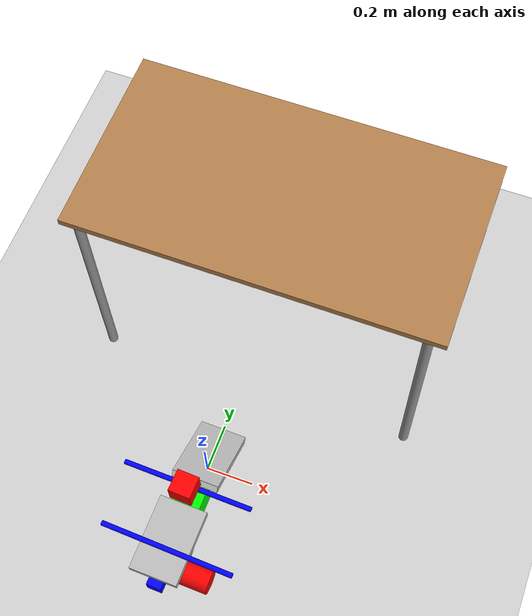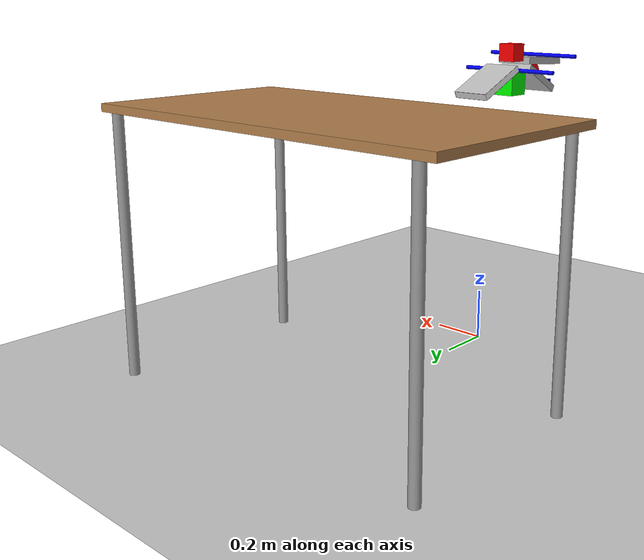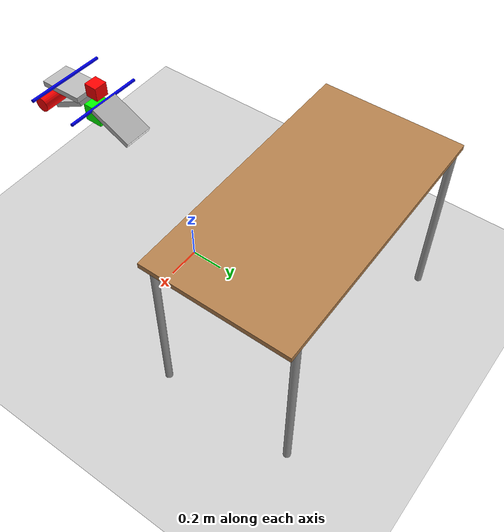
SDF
<sdf version="1.7">
 <world name="default">
  <light name="sun" type="directional">
   <pose>0 0 10 0 -0 0</pose>
   <diffuse>0.8 0.8 0.8 1</diffuse>
   <specular>0.2 0.2 0.2 1</specular>
   <attenuation>
    <range>1000</range>
    <constant>0.9</constant>
    <linear>0.01</linear>
    <quadratic>0.001</quadratic>
   </attenuation>
   <direction>-0.5 0.1 -0.9</direction>
   <spot><inner_angle>0</inner_angle><outer_angle>0</outer_angle><falloff>0</falloff></spot>
  </light>
  <model name="ground_plane">
   <static>1</static>
   <link name="link">
    <collision name="collision">
     <geometry><plane><normal>0 0 1</normal><size>100 100</size></plane></geometry>
     <surface><friction><ode><mu>100</mu><mu2>50</mu2></ode></friction></surface>
    </collision>
    <visual name="visual">
     <cast_shadows>0</cast_shadows>
     <geometry><plane><normal>0 0 1</normal><size>100 100</size></plane></geometry>
     <material>
      <script><uri>file://media/materials/scripts/gazebo.material</uri><name>Gazebo/Grey</name></script>
     </material>
    </visual>
   </link>
  </model>
  <gravity>0 0 -9.8</gravity>
  <magnetic_field>6e-06 2.3e-05 -4.2e-05</magnetic_field>
  <atmosphere type="adiabatic"/>
  <physics type="ode">
   <max_step_size>0.001</max_step_size>
   <real_time_factor>1</real_time_factor>
   <real_time_update_rate>1000</real_time_update_rate>
  </physics>
  <scene><ambient>0.4 0.4 0.4 1</ambient><background>0.7 0.7 0.7 1</background><shadows>1</shadows></scene>
  <audio><device>default</device></audio>
  <spherical_coordinates>
   <surface_model>EARTH_WGS84</surface_model>
   <latitude_deg>0</latitude_deg>
   <longitude_deg>0</longitude_deg>
   <elevation>0</elevation>
   <heading_deg>0</heading_deg>
  </spherical_coordinates>
  <model name="table">
   <static>1</static>
   <link name="link">
    <collision name="surface">
     <pose>0 0 1 0 -0 0</pose>
     <geometry><box><size>1.5 0.8 0.03</size></box></geometry>
     <surface>
      <friction><ode><mu>1.5</mu><mu2>1.5</mu2></ode></friction>
      <contact><ode><soft_cfm>0.0001</soft_cfm><soft_erp>0.4</soft_erp><kp>1e+06</kp><kd>10</kd></ode></contact>
     </surface>
    </collision>
    <visual name="visual1">
     <pose>0 0 1 0 -0 0</pose>
     <geometry><box><size>1.5 0.8 0.03</size></box></geometry>
     <material>
      <script><uri>file://media/materials/scripts/gazebo.material</uri><name>Gazebo/Wood</name></script>
     </material>
    </visual>
    <collision name="front_left_leg">
     <pose>0.68 0.38 0.5 0 -0 0</pose>
     <geometry><cylinder><radius>0.02</radius><length>1</length></cylinder></geometry>
    </collision>
    <visual name="front_left_leg">
     <pose>0.68 0.38 0.5 0 -0 0</pose>
     <geometry><cylinder><radius>0.02</radius><length>1</length></cylinder></geometry>
     <material>
      <script><uri>file://media/materials/scripts/gazebo.material</uri><name>Gazebo/Grey</name></script>
     </material>
    </visual>
    <collision name="front_right_leg">
     <pose>0.68 -0.38 0.5 0 -0 0</pose>
     <geometry><cylinder><radius>0.02</radius><length>1</length></cylinder></geometry>
    </collision>
    <visual name="front_right_leg">
     <pose>0.68 -0.38 0.5 0 -0 0</pose>
     <geometry><cylinder><radius>0.02</radius><length>1</length></cylinder></geometry>
     <material>
      <script><uri>file://media/materials/scripts/gazebo.material</uri><name>Gazebo/Grey</name></script>
     </material>
    </visual>
    <collision name="back_right_leg">
     <pose>-0.68 -0.38 0.5 0 -0 0</pose>
     <geometry><cylinder><radius>0.02</radius><length>1</length></cylinder></geometry>
    </collision>
    <visual name="back_right_leg">
     <pose>-0.68 -0.38 0.5 0 -0 0</pose>
     <geometry><cylinder><radius>0.02</radius><length>1</length></cylinder></geometry>
     <material>
      <script><uri>file://media/materials/scripts/gazebo.material</uri><name>Gazebo/Grey</name></script>
     </material>
    </visual>
    <collision name="back_left_leg">
     <pose>-0.68 0.38 0.5 0 -0 0</pose>
     <geometry><cylinder><radius>0.02</radius><length>1</length></cylinder></geometry>
    </collision>
    <visual name="back_left_leg">
     <pose>-0.68 0.38 0.5 0 -0 0</pose>
     <geometry><cylinder><radius>0.02</radius><length>1</length></cylinder></geometry>
     <material>
      <script><uri>file://media/materials/scripts/gazebo.material</uri><name>Gazebo/Grey</name></script>
     </material>
    </visual>
    <inertial>
     <inertia><ixx>1</ixx><ixy>0</ixy><ixz>0</ixz><iyy>1</iyy><iyz>0</iyz><izz>1</izz></inertia>
     <mass>50</mass>
    </inertial>
   </link>
   <pose>0.056083 0.801191 -1.2e-05 0 -0 2.5e-05</pose>
  </model>
  <plugin name="gazebo_link_attacher" filename="libgazebo_link_attacher.so"/>
  <model name="cube_b_small_0">
   <link name="link_2">
    <inertial>
     <mass>1</mass>
     <inertia>
      <ixx>7.84311e-06</ixx>
      <ixy>0</ixy>
      <ixz>0</ixz>
      <iyy>7.90554e-06</iyy>
      <iyz>0</iyz>
      <izz>1.02399e-05</izz>
     </inertia>
    </inertial>
    <visual name="visual">
     <geometry><box><size>0.05 0.05 0.05</size></box></geometry>
     <material>
      <lighting>1</lighting>
      <script><uri>file://media/materials/scripts/gazebo.material</uri><name>Gazebo/Grey</name></script>
      <ambient>0 0 1 1</ambient>
      <diffuse>0 0 1 1</diffuse>
      <specular>0 0 0 1</specular>
      <emissive>0 0 0 1</emissive>
      <shader type="vertex"><normal_map>__default__</normal_map></shader>
     </material>
    </visual>
    <collision name="collision">
     <geometry><box><size>0.05 0.05 0.05</size></box></geometry>
     <surface>
      <friction>
       <ode><mu>1</mu><mu2>1</mu2><fdir1>0 0 0</fdir1><slip1>0</slip1><slip2>0</slip2></ode>
       <torsional>
        <coefficient>1</coefficient>
        <patch_radius>0</patch_radius>
        <surface_radius>0</surface_radius>
        <use_patch_radius>1</use_patch_radius>
        <ode><slip>0</slip></ode>
       </torsional>
      </friction>
      <bounce><restitution_coefficient>0</restitution_coefficient><threshold>1e+06</threshold></bounce>
      <contact>
       <collide_without_contact>0</collide_without_contact>
       <collide_without_contact_bitmask>1</collide_without_contact_bitmask>
       <collide_bitmask>1</collide_bitmask>
       <ode>
        <soft_cfm>0</soft_cfm>
        <soft_erp>0.2</soft_erp>
        <kp>1e+13</kp>
        <kd>1</kd>
        <max_vel>0.01</max_vel>
        <min_depth>0</min_depth>
       </ode>
       <bullet>
        <split_impulse>1</split_impulse>
        <split_impulse_penetration_threshold>-0.01</split_impulse_penetration_threshold>
        <soft_cfm>0</soft_cfm>
        <soft_erp>0.2</soft_erp>
        <kp>1e+13</kp>
        <kd>1</kd>
       </bullet>
      </contact>
     </surface>
    </collision>
   </link>
   <static>0</static>
   <allow_auto_disable>0</allow_auto_disable>
   <pose>0.169284 -0.690401 0.987528 0.001246 -0.004258 -0.024413</pose>
  </model>
  <model name="cube_g">
   <link name="link_2">
    <inertial>
     <mass>1</mass>
     <inertia>
      <ixx>0.00166667</ixx>
      <iyy>0.00166667</iyy>
      <izz>0.00166667</izz>
      <ixy>0</ixy>
      <ixz>0</ixz>
      <iyz>0</iyz>
     </inertia>
    </inertial>
    <visual name="visual">
     <geometry><box><size>0.1 0.1 0.1</size></box></geometry>
     <material>
      <lighting>1</lighting>
      <script><uri>file://media/materials/scripts/gazebo.material</uri><name>Gazebo/Grey</name></script>
      <ambient>0 1 0 1</ambient>
      <diffuse>0 1 0 1</diffuse>
      <specular>0 0 0 1</specular>
      <emissive>0 0 0 1</emissive>
      <shader type="vertex"><normal_map>__default__</normal_map></shader>
     </material>
    </visual>
    <collision name="collision">
     <geometry><box><size>0.1 0.1 0.1</size></box></geometry>
     <surface>
      <friction>
       <ode><mu>1</mu><mu2>1</mu2><fdir1>0 0 0</fdir1><slip1>0</slip1><slip2>0</slip2></ode>
       <torsional>
        <coefficient>1</coefficient>
        <patch_radius>0</patch_radius>
        <surface_radius>0</surface_radius>
        <use_patch_radius>1</use_patch_radius>
        <ode><slip>0</slip></ode>
       </torsional>
      </friction>
      <bounce><restitution_coefficient>0</restitution_coefficient><threshold>1e+06</threshold></bounce>
      <contact>
       <collide_without_contact>0</collide_without_contact>
       <collide_without_contact_bitmask>1</collide_without_contact_bitmask>
       <collide_bitmask>1</collide_bitmask>
       <ode>
        <soft_cfm>0.0001</soft_cfm>
        <soft_erp>0.4</soft_erp>
        <kp>1e+06</kp>
        <kd>10</kd>
        <max_vel>0.01</max_vel>
        <min_depth>0</min_depth>
       </ode>
       <bullet>
        <split_impulse>1</split_impulse>
        <split_impulse_penetration_threshold>-0.01</split_impulse_penetration_threshold>
        <soft_cfm>0</soft_cfm>
        <soft_erp>0.2</soft_erp>
        <kp>1e+13</kp>
        <kd>1</kd>
       </bullet>
      </contact>
     </surface>
    </collision>
   </link>
   <static>0</static>
   <allow_auto_disable>0</allow_auto_disable>
   <pose>0.17007 -0.415898 1.01283 0.001112 -0.004103 -0.017184</pose>
  </model>
  <model name="cube_r_small">
   <link name="link_2">
    <inertial>
     <mass>0.250457</mass>
     <inertia>
      <ixx>0.000645016</ixx>
      <ixy>0</ixy>
      <ixz>0</ixz>
      <iyy>0.000658595</iyy>
      <iyz>0</iyz>
      <izz>0.000689071</izz>
     </inertia>
    </inertial>
    <visual name="visual">
     <geometry><box><size>0.075 0.075 0.075</size></box></geometry>
     <material>
      <lighting>1</lighting>
      <script><uri>file://media/materials/scripts/gazebo.material</uri><name>Gazebo/Grey</name></script>
      <ambient>1 0 0 1</ambient>
      <diffuse>1 0 0 1</diffuse>
      <specular>0 0 0 1</specular>
      <emissive>0 0 0 1</emissive>
      <shader type="vertex"><normal_map>__default__</normal_map></shader>
     </material>
    </visual>
    <collision name="collision">
     <geometry><box><size>0.075 0.075 0.075</size></box></geometry>
     <surface>
      <friction>
       <ode><mu>1</mu><mu2>1</mu2><fdir1>0 0 0</fdir1><slip1>0</slip1><slip2>0</slip2></ode>
       <torsional>
        <coefficient>1</coefficient>
        <patch_radius>0</patch_radius>
        <surface_radius>0</surface_radius>
        <use_patch_radius>1</use_patch_radius>
        <ode><slip>0</slip></ode>
       </torsional>
      </friction>
      <bounce><restitution_coefficient>0</restitution_coefficient><threshold>1e+06</threshold></bounce>
      <contact>
       <collide_without_contact>0</collide_without_contact>
       <collide_without_contact_bitmask>1</collide_without_contact_bitmask>
       <collide_bitmask>1</collide_bitmask>
       <ode>
        <soft_cfm>0.0001</soft_cfm>
        <soft_erp>0.4</soft_erp>
        <kp>1e+06</kp>
        <kd>10</kd>
        <max_vel>0.01</max_vel>
        <min_depth>0</min_depth>
       </ode>
       <bullet>
        <split_impulse>1</split_impulse>
        <split_impulse_penetration_threshold>-0.01</split_impulse_penetration_threshold>
        <soft_cfm>0</soft_cfm>
        <soft_erp>0.2</soft_erp>
        <kp>1e+13</kp>
        <kd>1</kd>
       </bullet>
      </contact>
     </surface>
    </collision>
   </link>
   <static>0</static>
   <allow_auto_disable>0</allow_auto_disable>
   <pose>0.163211 -0.416732 1.14449 0.00103 -0.003905 -0.040867</pose>
  </model>
  <model name="book_17_dynamic">
   <link name="cover">
    <pose>0 -0.000108 0.015405 0 -0 0</pose>
    <visual name="visual">
     <geometry><box><size>0.245 0.16 0.03</size></box></geometry>
     <material>
      <script>
       <uri>model://book_17/materials/scripts</uri>
       <uri>model://book_17/materials/textures</uri>
       <name>book_17</name>
      </script>
      <shader type="pixel"/>
     </material>
    </visual>
    <collision name="collision">
     <geometry><box><size>0.245 0.16 0.03</size></box></geometry>
     <surface>
      <friction>
       <ode><mu>1</mu><mu2>1</mu2><fdir1>0 0 0</fdir1><slip1>0</slip1><slip2>0</slip2></ode>
       <torsional>
        <coefficient>1</coefficient>
        <patch_radius>0</patch_radius>
        <surface_radius>0</surface_radius>
        <use_patch_radius>1</use_patch_radius>
        <ode><slip>0</slip></ode>
       </torsional>
      </friction>
      <bounce><restitution_coefficient>0</restitution_coefficient><threshold>1e+06</threshold></bounce>
      <contact>
       <collide_without_contact>0</collide_without_contact>
       <collide_without_contact_bitmask>1</collide_without_contact_bitmask>
       <collide_bitmask>1</collide_bitmask>
       <ode>
        <soft_cfm>0</soft_cfm>
        <soft_erp>0.2</soft_erp>
        <kp>1e+13</kp>
        <kd>1</kd>
        <max_vel>0.01</max_vel>
        <min_depth>0</min_depth>
       </ode>
       <bullet>
        <split_impulse>1</split_impulse>
        <split_impulse_penetration_threshold>-0.01</split_impulse_penetration_threshold>
        <soft_cfm>0</soft_cfm>
        <soft_erp>0.2</soft_erp>
        <kp>1e+13</kp>
        <kd>1</kd>
       </bullet>
      </contact>
     </surface>
    </collision>
    <inertial>
     <mass>2</mass>
     <inertia><ixx>0.00195</ixx><iyy>0.00341</iyy><izz>0.00521</izz><ixy>0</ixy><ixz>0</ixz><iyz>0</iyz></inertia>
    </inertial>
   </link>
   <link name="page">
    <pose>0 0.000608 0.015405 0 -0 0</pose>
    <visual name="visual">
     <geometry><box><size>0.24502 0.15862 0.028</size></box></geometry>
     <material>
      <lighting>1</lighting>
      <ambient>1 1 1 1</ambient>
      <diffuse>1 1 1 1</diffuse>
      <specular>0.01 0.01 0.01 1</specular>
      <emissive>0 0 0 1</emissive>
      <shader type="vertex"><normal_map>__default__</normal_map></shader>
      <script><name>ModelPreview_1::page::visual_MATERIAL_</name><uri>__default__</uri></script>
     </material>
    </visual>
    <collision name="collision">
     <geometry><box><size>0.245 0.16 0.03</size></box></geometry>
     <surface>
      <friction>
       <ode><mu>1</mu><mu2>1</mu2><fdir1>0 0 0</fdir1><slip1>0</slip1><slip2>0</slip2></ode>
       <torsional>
        <coefficient>1</coefficient>
        <patch_radius>0</patch_radius>
        <surface_radius>0</surface_radius>
        <use_patch_radius>1</use_patch_radius>
        <ode><slip>0</slip></ode>
       </torsional>
      </friction>
      <bounce><restitution_coefficient>0</restitution_coefficient><threshold>1e+06</threshold></bounce>
      <contact>
       <collide_without_contact>0</collide_without_contact>
       <collide_without_contact_bitmask>1</collide_without_contact_bitmask>
       <collide_bitmask>1</collide_bitmask>
       <ode>
        <soft_cfm>0</soft_cfm>
        <soft_erp>0.2</soft_erp>
        <kp>1e+13</kp>
        <kd>1</kd>
        <max_vel>0.01</max_vel>
        <min_depth>0</min_depth>
       </ode>
       <bullet>
        <split_impulse>1</split_impulse>
        <split_impulse_penetration_threshold>-0.01</split_impulse_penetration_threshold>
        <soft_cfm>0</soft_cfm>
        <soft_erp>0.2</soft_erp>
        <kp>1e+13</kp>
        <kd>1</kd>
       </bullet>
      </contact>
     </surface>
    </collision>
    <inertial>
     <mass>2</mass>
     <inertia><ixx>0.00195</ixx><iyy>0.00341</iyy><izz>0.00521</izz><ixy>0</ixy><ixz>0</ixz><iyz>0</iyz></inertia>
    </inertial>
   </link>
   <joint name="cover_to_page" type="fixed"><parent>cover</parent><child>page</child></joint>
   <static>0</static>
   <allow_auto_disable>0</allow_auto_disable>
   <pose>0.176853 -0.265607 1.01514 -0.004593 0.441461 1.54407</pose>
  </model>
  <model name="cylinder_r">
   <link name="link_0">
    <inertial>
     <mass>0.5</mass>
     <inertia><ixx>0.00114</ixx><ixy>0</ixy><ixz>0</ixz><iyy>0.00114</iyy><iyz>0</iyz><izz>0.0004</izz></inertia>
    </inertial>
    <visual name="visual">
     <geometry><cylinder><radius>0.04</radius><length>0.15</length></cylinder></geometry>
     <material>
      <lighting>1</lighting>
      <script><uri>file://media/materials/scripts/gazebo.material</uri><name>Gazebo/Grey</name></script>
      <ambient>1 0 0 1</ambient>
      <diffuse>1 0 0 1</diffuse>
      <specular>0 0 0 1</specular>
      <emissive>0 0 0 1</emissive>
      <shader type="vertex"><normal_map>__default__</normal_map></shader>
     </material>
    </visual>
    <collision name="collision">
     <geometry><cylinder><radius>0.04</radius><length>0.15</length></cylinder></geometry>
     <surface>
      <friction>
       <ode><mu>1</mu><mu2>1</mu2><fdir1>0 0 0</fdir1><slip1>0</slip1><slip2>0</slip2></ode>
       <torsional>
        <coefficient>1</coefficient>
        <patch_radius>0</patch_radius>
        <surface_radius>0</surface_radius>
        <use_patch_radius>1</use_patch_radius>
        <ode><slip>0</slip></ode>
       </torsional>
      </friction>
      <bounce><restitution_coefficient>0</restitution_coefficient><threshold>1e+06</threshold></bounce>
      <contact>
       <collide_without_contact>0</collide_without_contact>
       <collide_without_contact_bitmask>1</collide_without_contact_bitmask>
       <collide_bitmask>1</collide_bitmask>
       <ode>
        <soft_cfm>0.0001</soft_cfm>
        <soft_erp>0.4</soft_erp>
        <kp>1e+06</kp>
        <kd>10</kd>
        <max_vel>0.01</max_vel>
        <min_depth>0</min_depth>
       </ode>
       <bullet>
        <split_impulse>1</split_impulse>
        <split_impulse_penetration_threshold>-0.01</split_impulse_penetration_threshold>
        <soft_cfm>0</soft_cfm>
        <soft_erp>0.2</soft_erp>
        <kp>1e+13</kp>
        <kd>1</kd>
       </bullet>
      </contact>
     </surface>
    </collision>
   </link>
   <static>0</static>
   <allow_auto_disable>0</allow_auto_disable>
   <pose>0.26325 -0.645465 1.0463 1.57577 -0.990867 -1.59611</pose>
  </model>
  <model name="cylinder_b_small">
   <link name="link_0">
    <inertial>
     <mass>0.0157194</mass>
     <inertia>
      <ixx>0.000259721</ixx>
      <ixy>0</ixy>
      <ixz>0</ixz>
      <iyy>0.000259721</iyy>
      <iyz>0</iyz>
      <izz>5.58755e-07</izz>
     </inertia>
    </inertial>
    <visual name="visual">
     <geometry><cylinder><radius>0.00843157</radius><length>0.445034</length></cylinder></geometry>
     <material>
      <lighting>1</lighting>
      <script><uri>file://media/materials/scripts/gazebo.material</uri><name>Gazebo/Grey</name></script>
      <ambient>0 0 1 1</ambient>
      <diffuse>0 0 1 1</diffuse>
      <specular>0 0 0 1</specular>
      <emissive>0 0 0 1</emissive>
      <shader type="vertex"><normal_map>__default__</normal_map></shader>
     </material>
    </visual>
    <collision name="collision">
     <geometry><cylinder><radius>0.008432</radius><length>0.445034</length></cylinder></geometry>
     <surface>
      <friction>
       <ode><mu>1</mu><mu2>1</mu2><fdir1>0 0 0</fdir1><slip1>0</slip1><slip2>0</slip2></ode>
       <torsional>
        <coefficient>1</coefficient>
        <patch_radius>0</patch_radius>
        <surface_radius>0</surface_radius>
        <use_patch_radius>1</use_patch_radius>
        <ode><slip>0</slip></ode>
       </torsional>
      </friction>
      <bounce><restitution_coefficient>0</restitution_coefficient><threshold>1e+06</threshold></bounce>
      <contact>
       <collide_without_contact>0</collide_without_contact>
       <collide_without_contact_bitmask>1</collide_without_contact_bitmask>
       <collide_bitmask>1</collide_bitmask>
       <ode>
        <soft_cfm>0.0001</soft_cfm>
        <soft_erp>0.4</soft_erp>
        <kp>1e+06</kp>
        <kd>10</kd>
        <max_vel>0.01</max_vel>
        <min_depth>0</min_depth>
       </ode>
       <bullet>
        <split_impulse>1</split_impulse>
        <split_impulse_penetration_threshold>-0.01</split_impulse_penetration_threshold>
        <soft_cfm>0</soft_cfm>
        <soft_erp>0.2</soft_erp>
        <kp>1e+13</kp>
        <kd>1</kd>
       </bullet>
      </contact>
     </surface>
    </collision>
   </link>
   <static>0</static>
   <allow_auto_disable>0</allow_auto_disable>
   <pose>0.155806 -0.387442 1.07123 -1.56629 0.428178 -1.59127</pose>
  </model>
  <model name="book_13_fixed">
   <link name="link">
    <pose>0 0 0.015 0 -0 0</pose>
    <visual name="visual">
     <geometry><box><size>0.245 0.16 0.03</size></box></geometry>
     <material>
      <script>
       <uri>model://book_13/materials/scripts</uri>
       <uri>model://book_13/materials/textures</uri>
       <name>book_13</name>
      </script>
     </material>
    </visual>
    <collision name="collision">
     <geometry><box><size>0.245 0.16 0.03</size></box></geometry>
     <surface>
      <friction><ode><mu>1</mu><mu2>1</mu2></ode></friction>
      <contact><ode><soft_cfm>0.0001</soft_cfm><soft_erp>0.4</soft_erp><kp>1e+06</kp><kd>10</kd></ode></contact>
     </surface>
    </collision>
    <inertial>
     <mass>2</mass>
     <inertia><ixx>0.00442</ixx><iyy>0.0101</iyy><izz>0.0143</izz><ixy>0</ixy><ixz>0</ixz><iyz>0</iyz></inertia>
    </inertial>
   </link>
   <static>0</static>
   <allow_auto_disable>0</allow_auto_disable>
   <pose>0.17509 -0.583644 1.11887 -3.13869 0.045809 -1.59125</pose>
  </model>
  <model name="book_18_fixed">
   <link name="link">
    <pose>0 0 0.015 0 -0 0</pose>
    <visual name="visual">
     <geometry><box><size>0.22 0.15 0.03</size></box></geometry>
     <material>
      <script>
       <uri>model://book_18/materials/scripts</uri>
       <uri>model://book_18/materials/textures</uri>
       <name>book_18</name>
      </script>
     </material>
    </visual>
    <collision name="collision">
     <geometry><box><size>0.22 0.15 0.03</size></box></geometry>
     <surface>
      <friction><ode><mu>1</mu><mu2>1</mu2></ode></friction>
      <contact><ode><soft_cfm>0.0001</soft_cfm><soft_erp>0.4</soft_erp><kp>1e+06</kp><kd>10</kd></ode></contact>
     </surface>
    </collision>
    <inertial>
     <mass>1.5</mass>
     <inertia><ixx>0.003</ixx><iyy>0.0063</iyy><izz>0.0092</izz><ixy>0</ixy><ixz>0</ixz><iyz>0</iyz></inertia>
    </inertial>
   </link>
   <static>0</static>
   <allow_auto_disable>0</allow_auto_disable>
   <pose>0.168061 -0.568185 1.04139 3.13705 -0.497514 1.55446</pose>
  </model>
  <model name="cylinder_b_small_clone">
   <link name="link_0">
    <inertial>
     <mass>0.0157194</mass>
     <inertia>
      <ixx>0.000259721</ixx>
      <ixy>0</ixy>
      <ixz>0</ixz>
      <iyy>0.000259721</iyy>
      <iyz>0</iyz>
      <izz>5.58755e-07</izz>
     </inertia>
    </inertial>
    <visual name="visual">
     <geometry><cylinder><radius>0.00843157</radius><length>0.445034</length></cylinder></geometry>
     <material>
      <lighting>1</lighting>
      <script><uri>file://media/materials/scripts/gazebo.material</uri><name>Gazebo/Grey</name></script>
      <ambient>0 0 1 1</ambient>
      <diffuse>0 0 1 1</diffuse>
      <specular>0 0 0 1</specular>
      <emissive>0 0 0 1</emissive>
      <shader type="vertex"><normal_map>__default__</normal_map></shader>
     </material>
    </visual>
    <collision name="collision">
     <geometry><cylinder><radius>0.008432</radius><length>0.445034</length></cylinder></geometry>
     <surface>
      <friction>
       <ode><mu>1</mu><mu2>1</mu2><fdir1>0 0 0</fdir1><slip1>0</slip1><slip2>0</slip2></ode>
       <torsional>
        <coefficient>1</coefficient>
        <patch_radius>0</patch_radius>
        <surface_radius>0</surface_radius>
        <use_patch_radius>1</use_patch_radius>
        <ode><slip>0</slip></ode>
       </torsional>
      </friction>
      <bounce><restitution_coefficient>0</restitution_coefficient><threshold>1e+06</threshold></bounce>
      <contact>
       <collide_without_contact>0</collide_without_contact>
       <collide_without_contact_bitmask>1</collide_without_contact_bitmask>
       <collide_bitmask>1</collide_bitmask>
       <ode>
        <soft_cfm>0.0001</soft_cfm>
        <soft_erp>0.4</soft_erp>
        <kp>1e+06</kp>
        <kd>10</kd>
        <max_vel>0.01</max_vel>
        <min_depth>0</min_depth>
       </ode>
       <bullet>
        <split_impulse>1</split_impulse>
        <split_impulse_penetration_threshold>-0.01</split_impulse_penetration_threshold>
        <soft_cfm>0</soft_cfm>
        <soft_erp>0.2</soft_erp>
        <kp>1e+13</kp>
        <kd>1</kd>
       </bullet>
      </contact>
     </surface>
    </collision>
   </link>
   <static>0</static>
   <allow_auto_disable>0</allow_auto_disable>
   <pose>0.182546 -0.613944 1.12595 -1.59192 1.46186 1.5159</pose>
  </model>
 </world>
</sdf>
